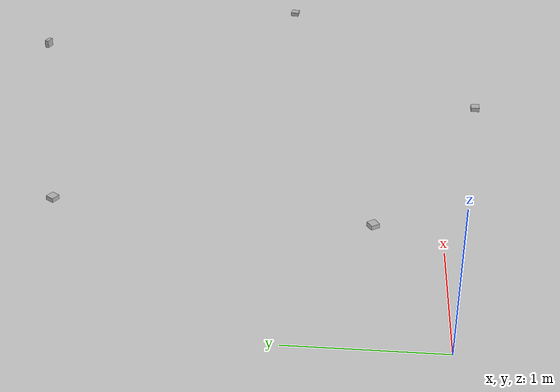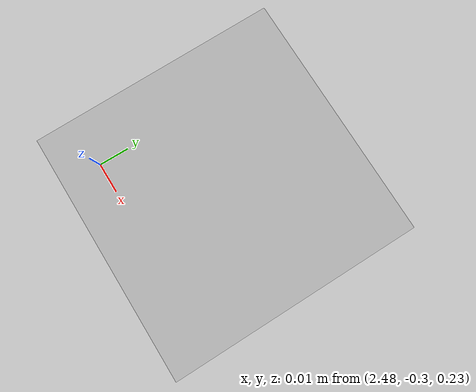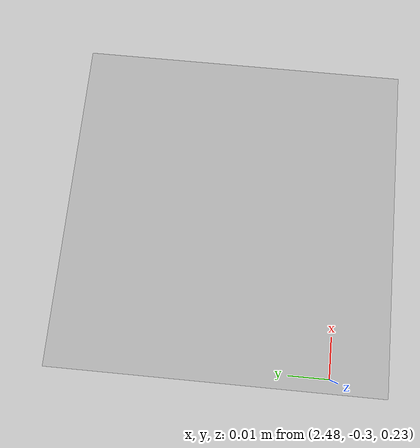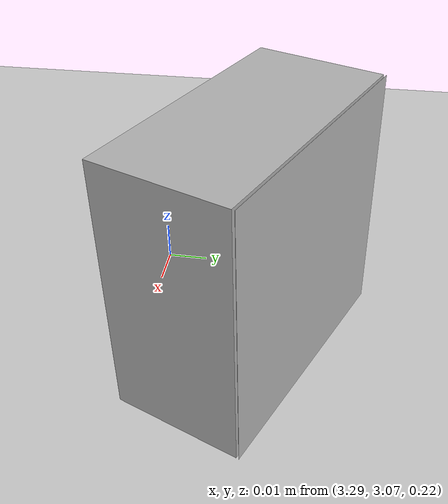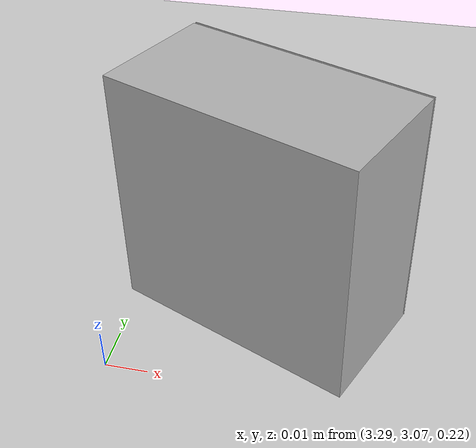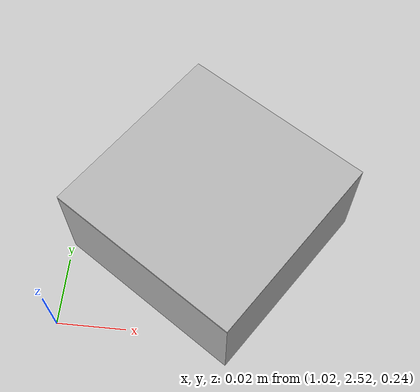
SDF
<sdf version='1.10'>
  <world name='empty'>
    <physics name='1ms' type='ignored'>
      <max_step_size>0.001</max_step_size>
      <real_time_factor>1</real_time_factor>
      <real_time_update_rate>1000</real_time_update_rate>
    </physics>
    <plugin name='gz::sim::systems::Physics' filename='gz-sim-physics-system'/>
    <plugin name='gz::sim::systems::UserCommands' filename='gz-sim-user-commands-system'/>
    <plugin name='gz::sim::systems::SceneBroadcaster' filename='gz-sim-scene-broadcaster-system'/>
    <plugin name='gz::sim::systems::Contact' filename='gz-sim-contact-system'/>
    <plugin name='gz::sim::systems::Sensors' filename='gz-sim-sensors-system'/>
    <plugin name='gz::sim::systems::Imu' filename='gz-sim-imu-system'/>
    <plugin name='gz::sim::systems::NavSat' filename='gz-sim-navsat-system'/>
    <spherical_coordinates>
      <surface_model>EARTH_WGS84</surface_model>
      <world_frame_orientation>ENU</world_frame_orientation>
      <latitude_deg>44.403373000000002</latitude_deg>
      <longitude_deg>8.9481067999999997</longitude_deg>
      <elevation>0</elevation>
      <heading_deg>0</heading_deg>
    </spherical_coordinates>
    <gravity>0 0 -9.8000000000000007</gravity>
    <magnetic_field>5.5644999999999998e-06 2.2875799999999999e-05 -4.2388400000000002e-05</magnetic_field>
    <atmosphere type='adiabatic'/>
    <scene>
      <ambient>0.400000006 0.400000006 0.400000006 1</ambient>
      <background>0.699999988 0.699999988 0.699999988 1</background>
      <shadows>true</shadows>
    </scene>
    <model name='ground_plane'>
      <static>true</static>
      <link name='link'>
        <collision name='collision'>
          <geometry>
            <plane>
              <normal>0 0 1</normal>
              <size>100 100</size>
            </plane>
          </geometry>
          <surface>
            <friction>
              <ode/>
            </friction>
            <bounce/>
            <contact/>
          </surface>
        </collision>
        <visual name='visual'>
          <geometry>
            <plane>
              <normal>0 0 1</normal>
              <size>100 100</size>
            </plane>
          </geometry>
          <material>
            <ambient>0.800000012 0.800000012 0.800000012 1</ambient>
            <diffuse>0.800000012 0.800000012 0.800000012 1</diffuse>
            <specular>0.800000012 0.800000012 0.800000012 1</specular>
          </material>
        </visual>
        <pose>0 0 0 0 0 0</pose>
        <inertial>
          <pose>0 0 0 0 0 0</pose>
          <mass>1</mass>
          <inertia>
            <ixx>1</ixx>
            <ixy>0</ixy>
            <ixz>0</ixz>
            <iyy>1</iyy>
            <iyz>0</iyz>
            <izz>1</izz>
          </inertia>
        </inertial>
        <enable_wind>false</enable_wind>
      </link>
      <pose>0 0 0 0 0 0</pose>
      <self_collide>false</self_collide>
    </model>
    <include>
      <uri>file:///root/gazebo_models/aruco_box</uri>
      <name>aruco_box</name>
      <pose>2.509929895401001 -0.27327200770378113 0.24999913871485183 7.9194902434325287e-18 6.5352227269773023e-18 -2.2739234568247627e-21</pose>
    </include>
    <include>
      <uri>file:///root/gazebo_models/aruco_box</uri>
      <name>aruco_box_1</name>
      <pose>0.91917598247528098 0.47155234217643749 0.25 -2.3709800176354406e-38 1.3206598942318055e-38 0.58320800779463466</pose>
    </include>
    <include>
      <uri>file:///root/gazebo_models/aruco_box</uri>
      <name>aruco_box_1_1</name>
      <pose>1.0609633922576904 2.5555503368377686 0.24999900162220004 9.5079605213251773e-18 -2.7724306297016902e-18 0.9786550564464952</pose>
    </include>
    <include>
      <uri>file:///root/gazebo_models/aruco_box</uri>
      <name>aruco_box_2</name>
      <pose>3.3213427066802974 3.0967564582824711 0.25041010975837708 -1.5703700135620471 -1.0621165749680215e-07 -0.39999999976957062</pose>
    </include>
    <include>
      <uri>file:///root/gazebo_models/aruco_box</uri>
      <name>aruco_box_3</name>
      <pose>4.0679111480712891 1.1351264715194702 0.25 0 0 -0.1499999972151897</pose>
    </include>
    <light name='sun' type='directional'>
      <pose>0 0 10 0 0 0</pose>
      <cast_shadows>true</cast_shadows>
      <intensity>1</intensity>
      <direction>-0.5 0.10000000000000001 -0.90000000000000002</direction>
      <diffuse>0.800000012 0.800000012 0.800000012 1</diffuse>
      <specular>0.200000003 0.200000003 0.200000003 1</specular>
      <attenuation>
        <range>1000</range>
        <linear>0.01</linear>
        <constant>0.90000000000000002</constant>
        <quadratic>0.001</quadratic>
      </attenuation>
      <spot>
        <inner_angle>0</inner_angle>
        <outer_angle>0</outer_angle>
        <falloff>0</falloff>
      </spot>
    </light>
  </world>
</sdf>

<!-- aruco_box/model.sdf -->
<sdf version="1.6">
  <model name="aruco_box">
    <static>false</static>

    <link name="link">
      <inertial>
        <mass>0.05</mass>
        <inertia>
          <ixx>1e-5</ixx><iyy>1e-5</iyy><izz>1e-5</izz>
          <ixy>0</ixy><ixz>0</ixz><iyz>0</iyz>
        </inertia>
      </inertial>

      <collision name="box_col">
        <geometry>
          <box><size>0.06 0.06 0.03</size></box>
        </geometry>
      </collision>

      <visual name="box_vis">
        <geometry>
          <box><size>0.06 0.06 0.03</size></box>
        </geometry>
        <material>
          <ambient>0.7 0.7 0.7 1</ambient>
          <diffuse>0.7 0.7 0.7 1</diffuse>
        </material>
      </visual>

      <!-- Top marker plane -->
      <visual name="marker_plane">
        <!-- box half height = 0.015, lift slightly to avoid z-fighting -->
        <pose>0 0 0.0156 0 0 0</pose>
        <geometry>
          <plane>
            <normal>0 0 1</normal>
            <size>0.06 0.06</size>
          </plane>
        </geometry>
        <material>
          <script>
            <uri>model://aruco_box/materials/scripts</uri>
            <uri>model://aruco_box/materials/textures</uri>
            <name>ArucoBox/Marker</name>
          </script>
        </material>
      </visual>

    </link>
  </model>
</sdf>
